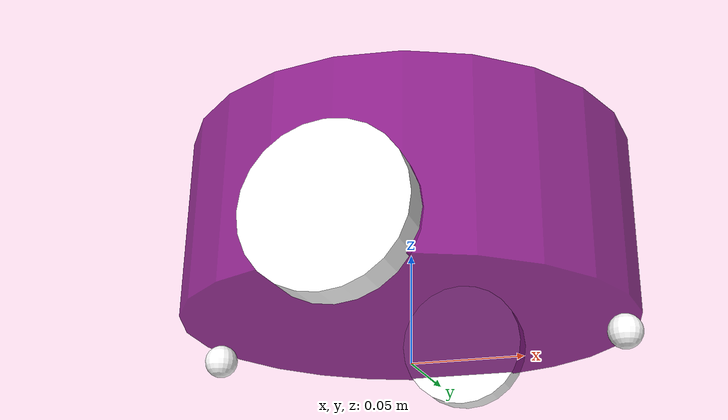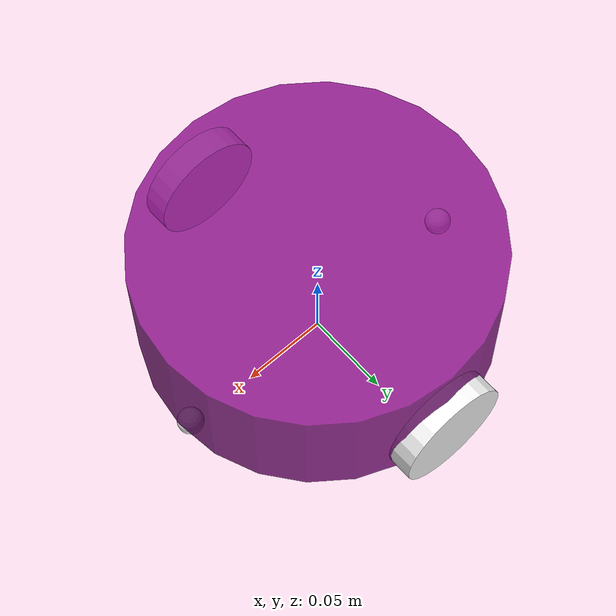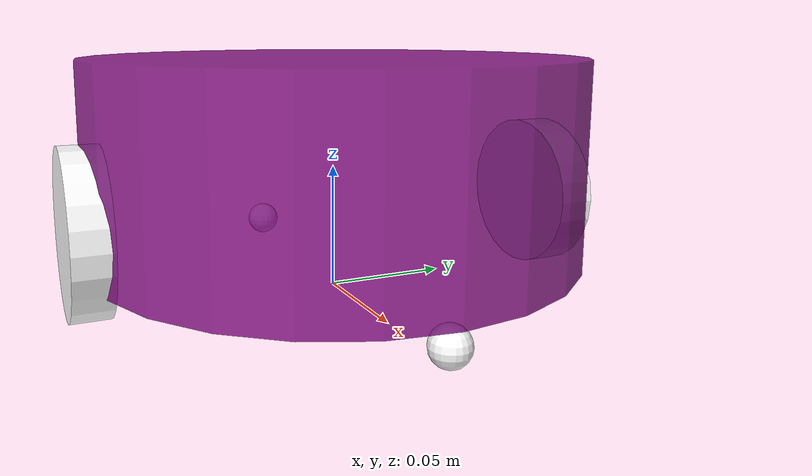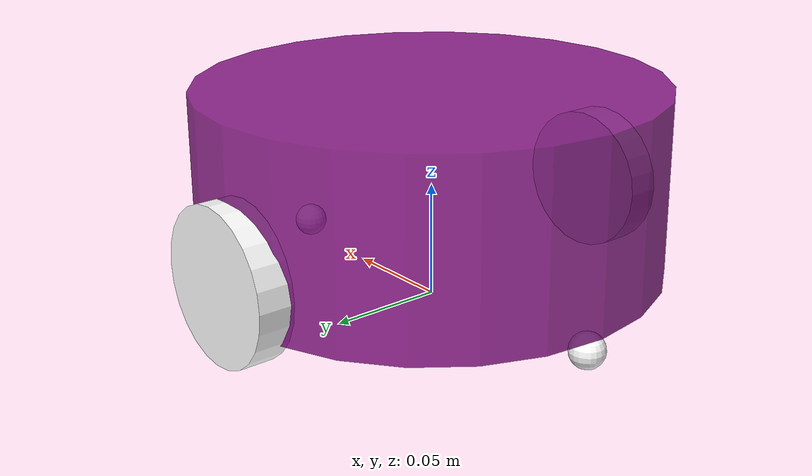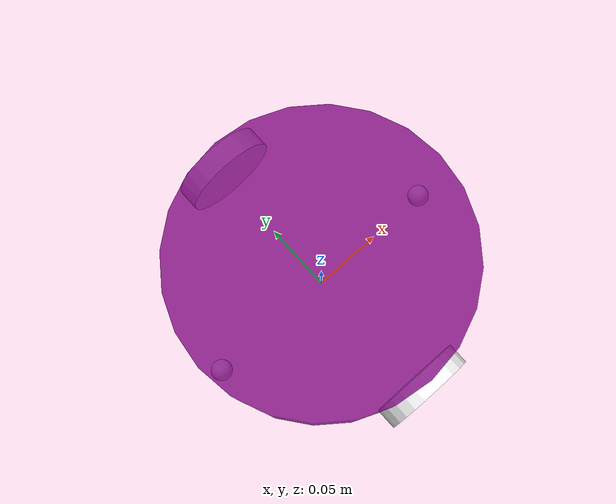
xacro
<robot name="base" xmlns:xacro="http://www.ros.org/wiki/xacro">
    <!-- * Macro for inertia matrix -->
    <xacro:macro name="sphere_inertial_matrix" params="m r">
        <inertial>
            <mass value="${m}" />
            <inertia ixx="${2*m*r*r/5}" ixy="0" ixz="0"
                iyy="${2*m*r*r/5}" iyz="0"
                izz="${2*m*r*r/5}" />
        </inertial>
    </xacro:macro>

    <xacro:macro name="cylinder_inertial_matrix" params="m r h">
        <inertial>
            <mass value="${m}" />
            <inertia ixx="${m*(3*r*r+h*h)/12}" ixy="0" ixz="0"
                iyy="${m*(3*r*r+h*h)/12}" iyz="0"
                izz="${m*r*r/2}" />
        </inertial>
    </xacro:macro>

    <xacro:macro name="Box_inertial_matrix" params="m l w h">
        <inertial>
            <mass value="${m}" />
            <inertia ixx="${m*(h*h + l*l)/12}" ixy="0" ixz="0"
                iyy="${m*(w*w + l*l)/12}" iyz="0"
                izz="${m*(w*w + h*h)/12}" />
        </inertial>
    </xacro:macro>

    <!-- * Parameters -->
    <xacro:property name="PI" value="3.14159265358979" />
    <xacro:property name="base_footprint_radius" value="0.0000001" />
    <xacro:property name="base_link_radius" value="0.1" />
    <xacro:property name="base_link_length" value="0.08" />
    <xacro:property name="base_link_mass" value="0.5" />
    <xacro:property name="ground_space" value="0.015" />

    <!-- * base_footprint -->
    <link name="base_footprint">
        <visual>
            <geometry>
                <sphere radius="${base_footprint_radius}" />
            </geometry>
        </visual>
    </link>

    <!-- * base_link -->
    <link name="base_link">
        <visual>
            <geometry>
                <cylinder radius="${base_link_radius}" length="${base_link_length}" />
            </geometry>
            <origin xyz="0 0 0" rpy="0 0 0" />
            <material name="base_color">
                <color rgba="0.5 0 0.5 0.8" />
            </material>
        </visual>
        <collision>
            <geometry>
                <cylinder radius="${base_link_radius}" length="${base_link_length}" />
            </geometry>
        </collision>
        <xacro:cylinder_inertial_matrix m="${base_link_mass}" r="${base_link_radius}"
            h="${base_link_length}" />
    </link>

    <joint name="base_link2base_footprint" type="fixed">
        <parent link="base_footprint" />
        <child link="base_link" />
        <origin xyz="0 0 ${ground_space + base_link_length / 2}" />
    </joint>

    <gazebo reference="base_link">
        <material>Gazebo/Yellow</material>
    </gazebo>

    <!-- * Template: driver wheel -->
    <xacro:property name="wheel_radius" value="0.0325" />
    <xacro:property name="wheel_length" value="0.015" />
    <xacro:property name="wheel_mass" value="0.05" />

    <xacro:macro name="add_wheel" params="name LorR_flag">
        <link name="wheel_${name}">
            <visual>
                <geometry>
                    <cylinder radius="${wheel_radius}" length="${wheel_length}" />
                </geometry>
                <origin xyz="0 0 0" rpy="${PI / 2} 0 0" />
                <material name="wheel_${name}_color">
                    <color rgba="1 1 1 0.95" />
                </material>
            </visual>
            <collision>
                <geometry>
                    <cylinder radius="${wheel_radius}" length="${wheel_length}" />
                </geometry>
                <origin xyz="0 0 0" rpy="${PI / 2} 0 0" />
            </collision>
            <xacro:cylinder_inertial_matrix m="${wheel_mass}" r="${wheel_radius}"
                h="${wheel_length}"></xacro:cylinder_inertial_matrix>
        </link>

        <joint name="wheel_${name}_2base" type="continuous">
            <parent link="base_link"></parent>
            <child link="wheel_${name}"></child>
            <origin
                xyz="0 ${LorR_flag * base_link_radius} ${-(ground_space + base_link_length / 2 - wheel_radius)}"
                rpy="0 0 0" />
            <axis xyz="0 1 0" />
        </joint>

        <gazebo reference="wheel_${name}">
            <material>Gazebo/Red</material>
        </gazebo>
    </xacro:macro>

    <!-- * Template: universal wheel -->
    <xacro:property name="uni_wheel_radius" value="0.0075" />
    <xacro:property name="uni_wheel_mass" value="0.03" />
    <xacro:macro name="add_uni_wheel" params="name ForB_flag">
        <link name="uni_wheel_${name}">
            <visual>
                <geometry>
                    <sphere radius="${uni_wheel_radius}" />
                </geometry>
                <origin xyz="0 0 0" rpy="0 0 0" />
                <material name="uni_wheel_${name}_color">
                    <color rgba="1 1 1 0.95" />
                </material>
            </visual>
            <collision>
                <geometry>
                    <sphere radius="${uni_wheel_radius}" />
                </geometry>
                <origin xyz="0 0 0" rpy="0 0 0" />
            </collision>
            <xacro:sphere_inertial_matrix m="${uni_wheel_mass}" r="${uni_wheel_radius}" />
        </link>

        <joint name="uniWheel_${name}_2base" type="continuous">
            <parent link="base_link"></parent>
            <child link="uni_wheel_${name}"></child>
            <origin
                xyz="${ForB_flag * (base_link_radius - uni_wheel_radius)} 0 ${-(base_link_length / 2 + ground_space / 2)}"
                rpy="0 0 0" />
            <axis xyz="1 1 1" />
        </joint>

        <gazebo reference="uni_wheel_${name}">
            <material>Gazebo/Red</material>
        </gazebo>
    </xacro:macro>

    <xacro:add_wheel name="Left" LorR_flag="1" />
    <xacro:add_wheel name="Right" LorR_flag="-1" />

    <xacro:add_uni_wheel name="Forward" ForB_flag="1" />
    <xacro:add_uni_wheel name="Back" ForB_flag="-1" />
</robot>
